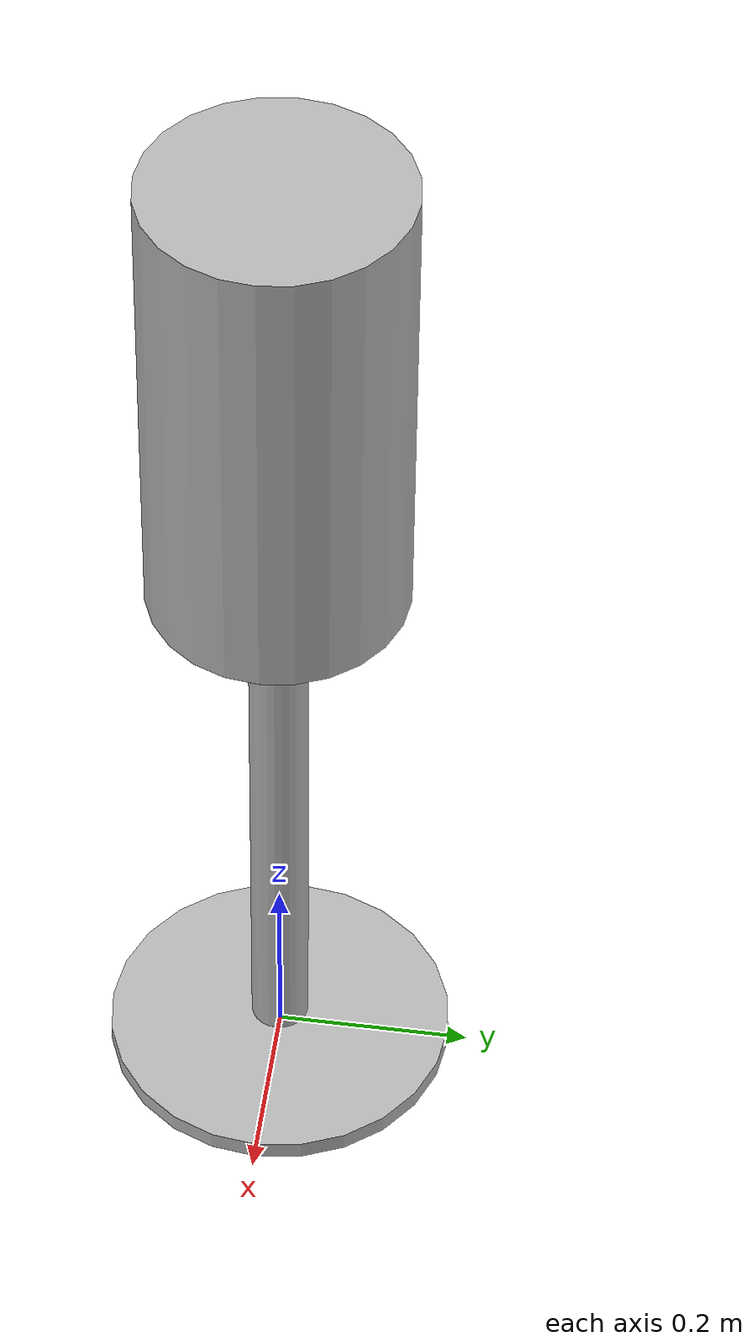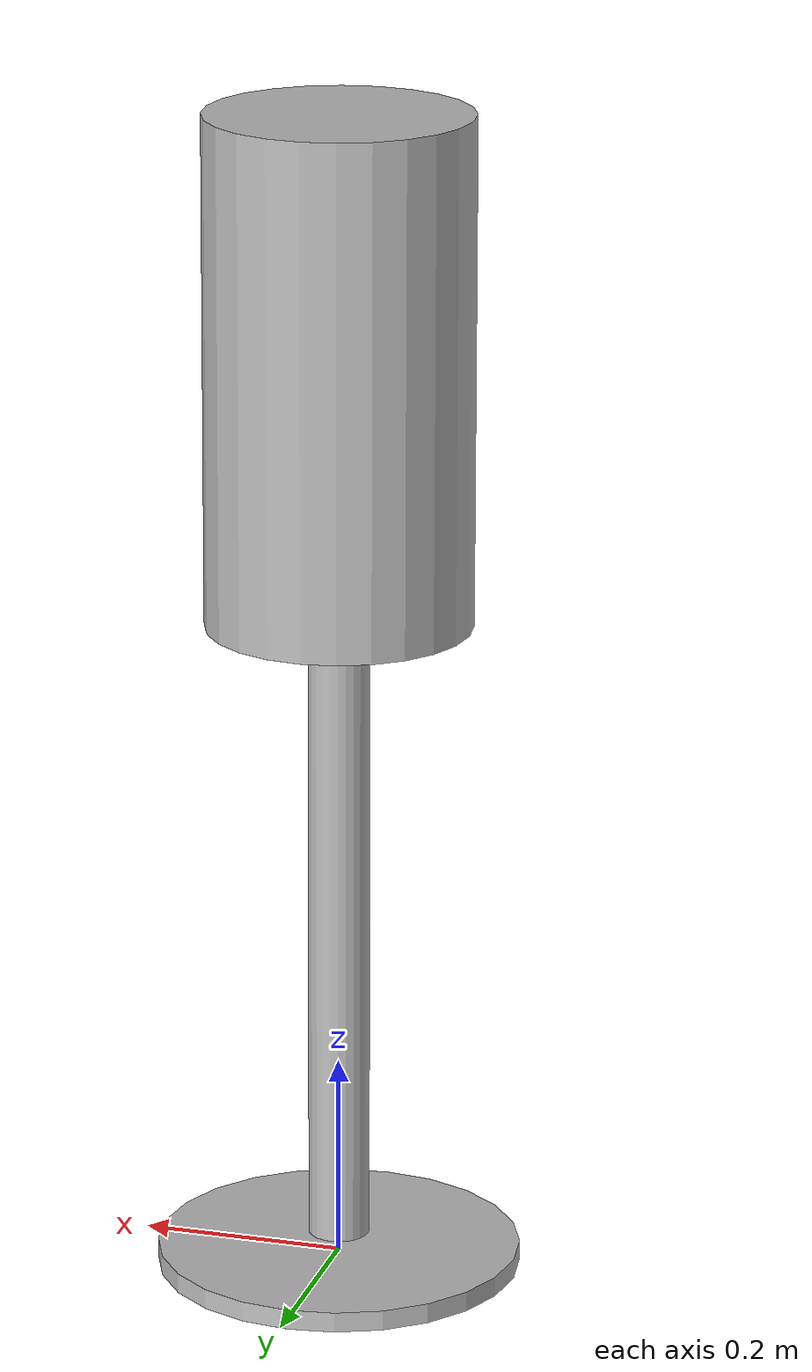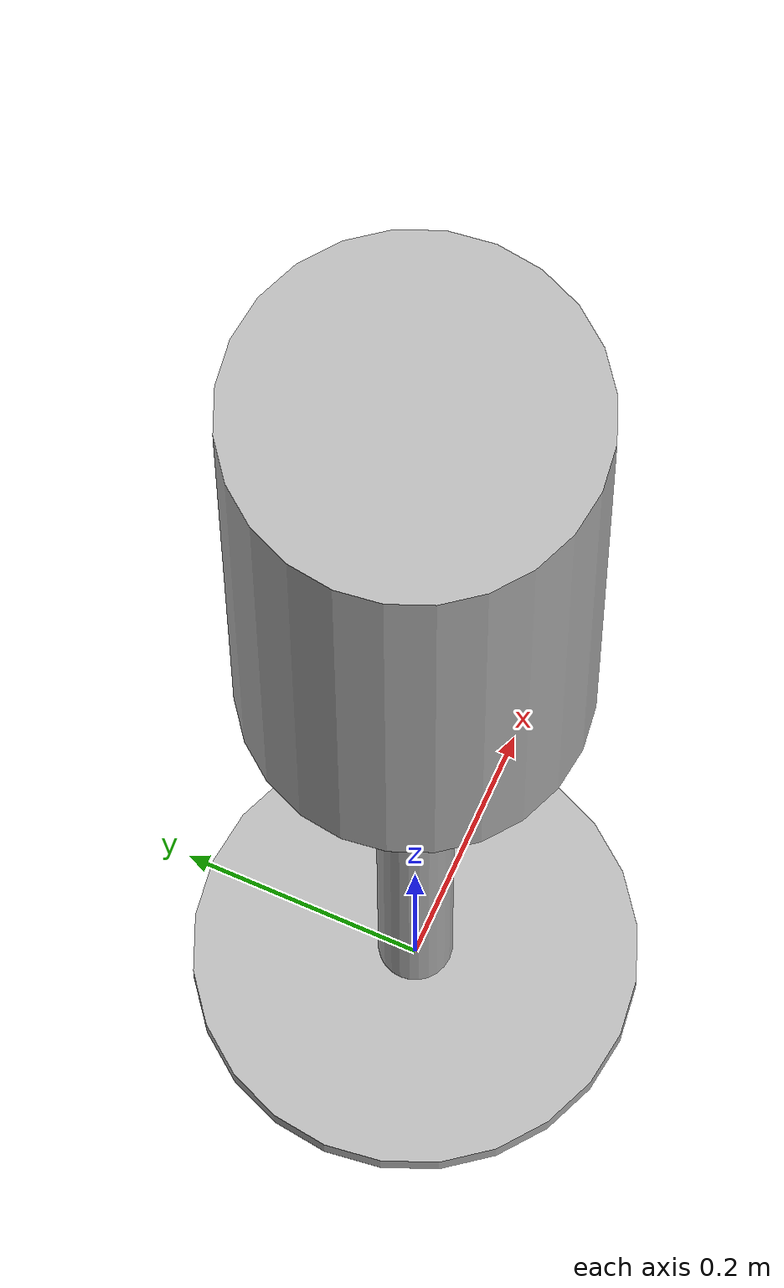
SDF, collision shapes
<sdf version='1.6'>
  <model name='lamp_ikea_arstid'>
    <link name='base_link'>
      <pose frame=''>0 0 0 0 -0 0</pose>
      <inertial>
        <pose frame=''>0 0 0.52 0 -0 0</pose>
        <mass>10</mass>
        <inertia>
          <ixx>1.0893328976</ixx>
          <ixy>0</ixy>
          <ixz>0</ixz>
          <iyy>1.0893328976</iyy>
          <iyz>0</iyz>
          <izz>0.162</izz>
        </inertia>
      </inertial>
      <collision name='column_lamp'>
        <pose frame=''>0 0 0.42 0 -0 0</pose>
        <geometry>
          <cylinder>
            <radius>.03</radius>
            <length>0.8</length>
          </cylinder>
        </geometry>
      </collision>
      <collision name='base_lamp'>
        <pose frame=''>0 0 0 0 -0 0</pose>
        <geometry>
          <cylinder>
            <radius>.18</radius>
            <length>0.02</length>
          </cylinder>
        </geometry>
      </collision>
      <collision name='top_lamp'>
        <pose frame=''>0 0 0.9 0 -0 0</pose>
        <geometry>
          <cylinder>
            <radius>0.13</radius>
            <length>0.50</length>
          </cylinder>
        </geometry>
      </collision>
      <visual name='base_link_visual'>
        <pose frame=''>0 0 0 0 -0 0</pose>
        <geometry>
          <mesh>
            <scale>1 1 2</scale>
            <uri>/opt/ros/kinetic/share/cob_gazebo_objects/Media/models/lamp_ikea_arstid.dae</uri>
          </mesh>
        </geometry>
      </visual>
    </link>
    <static>0</static>
  </model>
</sdf>
